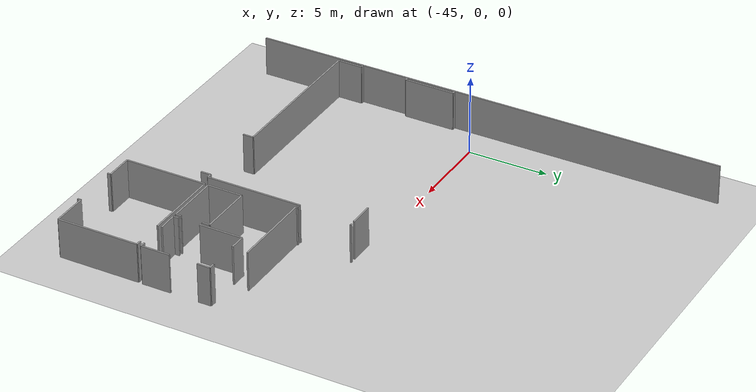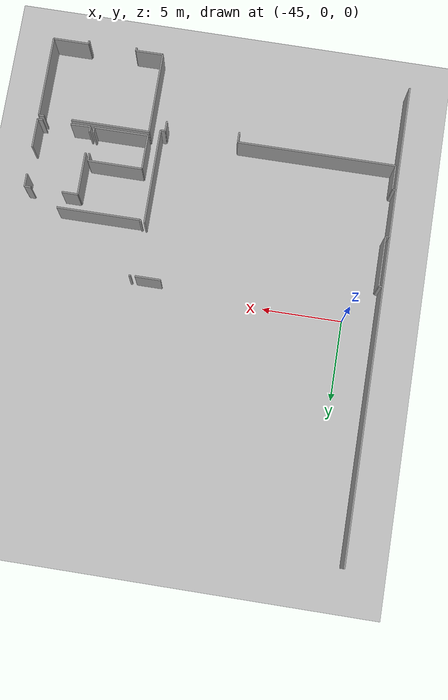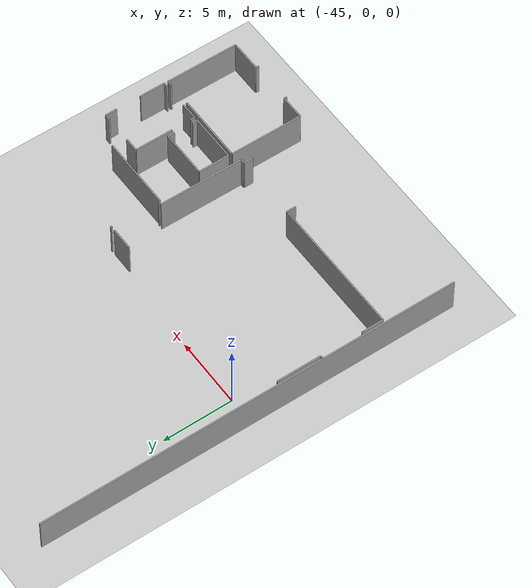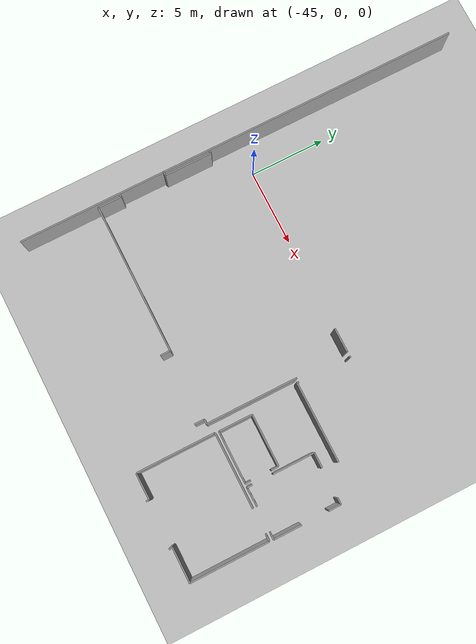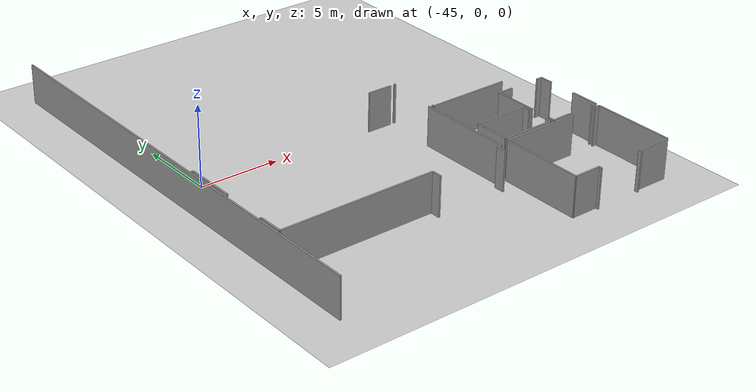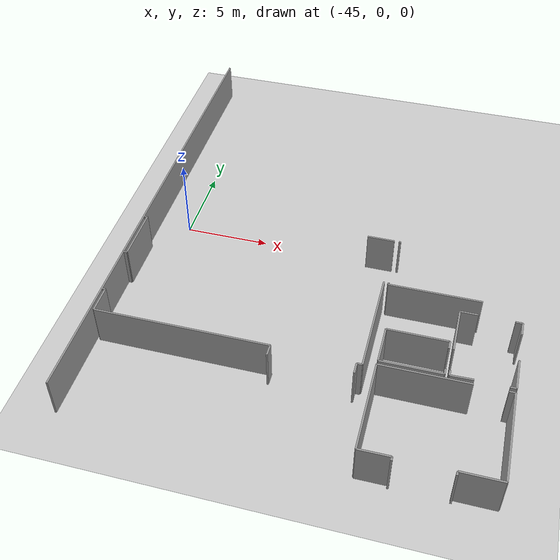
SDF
<sdf version="1.6">
 <world name="default">
  <model name="ground_plane">
   <static>1</static>
   <link name="link">
    <collision name="collision">
     <geometry><plane><normal>0 0 1</normal><size>100 100</size></plane></geometry>
     <surface><friction><ode><mu>100</mu><mu2>50</mu2></ode></friction></surface>
    </collision>
    <visual name="visual">
     <cast_shadows>0</cast_shadows>
     <geometry><plane><normal>0 0 1</normal><size>100 100</size></plane></geometry>
     <material>
      <script><uri>file://media/materials/scripts/gazebo.material</uri><name>Gazebo/Grey</name></script>
     </material>
    </visual>
   </link>
  </model>
  <model name="50045231">
   <static>1</static>
   <link name="Wall_0">
    <collision name="Wall_0_Collision">
     <geometry><box><size>1.54801707894 0.1 2.5</size></box></geometry>
     <pose>0.774008539471 0 1.25 0 0 0</pose>
    </collision>
    <visual name="Wall_0_Visual">
     <pose>0.774008539471 0 1.25 0 0 0</pose>
     <geometry><box><size>1.54801707894 0.1 2.5</size></box></geometry>
     <material>
      <script><uri>file://media/materials/scripts/gazebo.material</uri><name>Gazebo/Grey</name></script>
      <ambient>1 1 1 1</ambient>
     </material>
    </visual>
    <pose>0.215707297885 -24.7173917181 0 0 0 1.57079632679</pose>
   </link>
   <link name="Wall_1">
    <collision name="Wall_1_Collision">
     <geometry><box><size>0.215707297885 0.1 2.5</size></box></geometry>
     <pose>0.107853648943 0 1.25 0 0 0</pose>
    </collision>
    <visual name="Wall_1_Visual">
     <pose>0.107853648943 0 1.25 0 0 0</pose>
     <geometry><box><size>0.215707297885 0.1 2.5</size></box></geometry>
     <material>
      <script><uri>file://media/materials/scripts/gazebo.material</uri><name>Gazebo/Grey</name></script>
      <ambient>1 1 1 1</ambient>
     </material>
    </visual>
    <pose>0.215707297885 -23.1693746392 0 0 0 3.14159265359</pose>
   </link>
   <link name="Wall_2">
    <collision name="Wall_2_Collision">
     <geometry><box><size>0.233090768362 0.1 2.5</size></box></geometry>
     <pose>0.116545384181 0 1.25 0 0 0</pose>
    </collision>
    <visual name="Wall_2_Visual">
     <pose>0.116545384181 0 1.25 0 0 0</pose>
     <geometry><box><size>0.233090768362 0.1 2.5</size></box></geometry>
     <material>
      <script><uri>file://media/materials/scripts/gazebo.material</uri><name>Gazebo/Grey</name></script>
      <ambient>1 1 1 1</ambient>
     </material>
    </visual>
    <pose>0.0 -20.1388139905 0 0 0 0.0</pose>
   </link>
   <link name="Wall_3">
    <collision name="Wall_3_Collision">
     <geometry><box><size>3.15440201496 0.1 2.5</size></box></geometry>
     <pose>1.57720100748 0 1.25 0 0 0</pose>
    </collision>
    <visual name="Wall_3_Visual">
     <pose>1.57720100748 0 1.25 0 0 0</pose>
     <geometry><box><size>3.15440201496 0.1 2.5</size></box></geometry>
     <material>
      <script><uri>file://media/materials/scripts/gazebo.material</uri><name>Gazebo/Grey</name></script>
      <ambient>1 1 1 1</ambient>
     </material>
    </visual>
    <pose>0.233090768362 -20.1388139905 0 0 0 1.57079632679</pose>
   </link>
   <link name="Wall_4">
    <collision name="Wall_4_Collision">
     <geometry><box><size>0.206063912803 0.1 2.5</size></box></geometry>
     <pose>0.103031956402 0 1.25 0 0 0</pose>
    </collision>
    <visual name="Wall_4_Visual">
     <pose>0.103031956402 0 1.25 0 0 0</pose>
     <geometry><box><size>0.206063912803 0.1 2.5</size></box></geometry>
     <material>
      <script><uri>file://media/materials/scripts/gazebo.material</uri><name>Gazebo/Grey</name></script>
      <ambient>1 1 1 1</ambient>
     </material>
    </visual>
    <pose>0.233090768362 -16.9844119756 0 0 0 3.14159265359</pose>
   </link>
   <link name="Wall_23">
    <collision name="Wall_23_Collision">
     <geometry><box><size>1.59344249814 0.1 2.5</size></box></geometry>
     <pose>0.796721249072 0 1.25 0 0 0</pose>
    </collision>
    <visual name="Wall_23_Visual">
     <pose>0.796721249072 0 1.25 0 0 0</pose>
     <geometry><box><size>1.59344249814 0.1 2.5</size></box></geometry>
     <material>
      <script><uri>file://media/materials/scripts/gazebo.material</uri><name>Gazebo/Grey</name></script>
      <ambient>1 1 1 1</ambient>
     </material>
    </visual>
    <pose>13.4067161102 -15.2831158285 0 0 0 0.0</pose>
   </link>
   <link name="Wall_24">
    <collision name="Wall_24_Collision">
     <geometry><box><size>6.01163550542 0.1 2.5</size></box></geometry>
     <pose>3.00581775271 0 1.25 0 0 0</pose>
    </collision>
    <visual name="Wall_24_Visual">
     <pose>3.00581775271 0 1.25 0 0 0</pose>
     <geometry><box><size>6.01163550542 0.1 2.5</size></box></geometry>
     <material>
      <script><uri>file://media/materials/scripts/gazebo.material</uri><name>Gazebo/Grey</name></script>
      <ambient>1 1 1 1</ambient>
     </material>
    </visual>
    <pose>15.0001586083 -18.6902760419 0 0 0 -1.57079632679</pose>
   </link>
   <link name="Wall_25">
    <collision name="Wall_25_Collision">
     <geometry><box><size>0.299452484123 0.1 2.5</size></box></geometry>
     <pose>0.149726242062 0 1.25 0 0 0</pose>
    </collision>
    <visual name="Wall_25_Visual">
     <pose>0.149726242062 0 1.25 0 0 0</pose>
     <geometry><box><size>0.299452484123 0.1 2.5</size></box></geometry>
     <material>
      <script><uri>file://media/materials/scripts/gazebo.material</uri><name>Gazebo/Grey</name></script>
      <ambient>1 1 1 1</ambient>
     </material>
    </visual>
    <pose>15.0001586083 -24.7019115473 0 0 0 3.14159265359</pose>
   </link>
   <link name="Wall_26">
    <collision name="Wall_26_Collision">
     <geometry><box><size>0.640016241491 0.1 2.5</size></box></geometry>
     <pose>0.320008120745 0 1.25 0 0 0</pose>
    </collision>
    <visual name="Wall_26_Visual">
     <pose>0.320008120745 0 1.25 0 0 0</pose>
     <geometry><box><size>0.640016241491 0.1 2.5</size></box></geometry>
     <material>
      <script><uri>file://media/materials/scripts/gazebo.material</uri><name>Gazebo/Grey</name></script>
      <ambient>1 1 1 1</ambient>
     </material>
    </visual>
    <pose>14.7007061242 -24.7019115473 0 0 0 -1.57079632679</pose>
   </link>
   <link name="Wall_27">
    <collision name="Wall_27_Collision">
     <geometry><box><size>0.651055379677 0.1 2.5</size></box></geometry>
     <pose>0.325527689838 0 1.25 0 0 0</pose>
    </collision>
    <visual name="Wall_27_Visual">
     <pose>0.325527689838 0 1.25 0 0 0</pose>
     <geometry><box><size>0.651055379677 0.1 2.5</size></box></geometry>
     <material>
      <script><uri>file://media/materials/scripts/gazebo.material</uri><name>Gazebo/Grey</name></script>
      <ambient>1 1 1 1</ambient>
     </material>
    </visual>
    <pose>10.1217477367 -25.3419277888 0 0 0 1.57079632679</pose>
   </link>
   <link name="Wall_28">
    <collision name="Wall_28_Collision">
     <geometry><box><size>9.90607593593 0.1 2.5</size></box></geometry>
     <pose>4.95303796796 0 1.25 0 0 0</pose>
    </collision>
    <visual name="Wall_28_Visual">
     <pose>4.95303796796 0 1.25 0 0 0</pose>
     <geometry><box><size>9.90607593593 0.1 2.5</size></box></geometry>
     <material>
      <script><uri>file://media/materials/scripts/gazebo.material</uri><name>Gazebo/Grey</name></script>
      <ambient>1 1 1 1</ambient>
     </material>
    </visual>
    <pose>10.1217477367 -24.6908724091 0 0 0 -3.13891557532</pose>
   </link>
   <link name="Wall_29">
    <collision name="Wall_29_Collision">
     <geometry><box><size>0.125110232774 0.1 2.5</size></box></geometry>
     <pose>0.0625551163868 0 1.25 0 0 0</pose>
    </collision>
    <visual name="Wall_29_Visual">
     <pose>0.0625551163868 0 1.25 0 0 0</pose>
     <geometry><box><size>0.125110232774 0.1 2.5</size></box></geometry>
     <material>
      <script><uri>file://media/materials/scripts/gazebo.material</uri><name>Gazebo/Grey</name></script>
      <ambient>1 1 1 1</ambient>
     </material>
    </visual>
    <pose>15.2588804791 -18.8205886271 0 0 0 1.57079632679</pose>
   </link>
   <link name="Wall_30">
    <collision name="Wall_30_Collision">
     <geometry><box><size>0.125110232774 0.1 2.5</size></box></geometry>
     <pose>0.0625551163868 0 1.25 0 0 0</pose>
    </collision>
    <visual name="Wall_30_Visual">
     <pose>0.0625551163868 0 1.25 0 0 0</pose>
     <geometry><box><size>0.125110232774 0.1 2.5</size></box></geometry>
     <material>
      <script><uri>file://media/materials/scripts/gazebo.material</uri><name>Gazebo/Grey</name></script>
      <ambient>1 1 1 1</ambient>
     </material>
    </visual>
    <pose>15.2588804791 -15.2748681965 0 0 0 0.0</pose>
   </link>
   <link name="Wall_41">
    <collision name="Wall_41_Collision">
     <geometry><box><size>5.2339623277 0.1 2.5</size></box></geometry>
     <pose>2.61698116385 0 1.25 0 0 0</pose>
    </collision>
    <visual name="Wall_41_Visual">
     <pose>2.61698116385 0 1.25 0 0 0</pose>
     <geometry><box><size>5.2339623277 0.1 2.5</size></box></geometry>
     <material>
      <script><uri>file://media/materials/scripts/gazebo.material</uri><name>Gazebo/Grey</name></script>
      <ambient>1 1 1 1</ambient>
     </material>
    </visual>
    <pose>20.4928277323 -18.8080268492 0 0 0 -3.13919260001</pose>
   </link>
   <link name="Wall_71">
    <collision name="Wall_71_Collision">
     <geometry><box><size>0.342086397117 0.1 2.5</size></box></geometry>
     <pose>0.171043198559 0 1.25 0 0 0</pose>
    </collision>
    <visual name="Wall_71_Visual">
     <pose>0.171043198559 0 1.25 0 0 0</pose>
     <geometry><box><size>0.342086397117 0.1 2.5</size></box></geometry>
     <material>
      <script><uri>file://media/materials/scripts/gazebo.material</uri><name>Gazebo/Grey</name></script>
      <ambient>1 1 1 1</ambient>
     </material>
    </visual>
    <pose>19.3635365846 -24.2518446146 0 0 0 1.57079632679</pose>
   </link>
   <link name="Wall_72">
    <collision name="Wall_72_Collision">
     <geometry><box><size>2.71524733379 0.1 2.5</size></box></geometry>
     <pose>1.3576236669 0 1.25 0 0 0</pose>
    </collision>
    <visual name="Wall_72_Visual">
     <pose>1.3576236669 0 1.25 0 0 0</pose>
     <geometry><box><size>2.71524733379 0.1 2.5</size></box></geometry>
     <material>
      <script><uri>file://media/materials/scripts/gazebo.material</uri><name>Gazebo/Grey</name></script>
      <ambient>1 1 1 1</ambient>
     </material>
    </visual>
    <pose>19.3635365846 -22.5307541508 0 0 0 1.57079632679</pose>
   </link>
   <link name="Wall_73">
    <collision name="Wall_73_Collision">
     <geometry><box><size>0.994918189835 0.1 2.5</size></box></geometry>
     <pose>0.497459094918 0 1.25 0 0 0</pose>
    </collision>
    <visual name="Wall_73_Visual">
     <pose>0.497459094918 0 1.25 0 0 0</pose>
     <geometry><box><size>0.994918189835 0.1 2.5</size></box></geometry>
     <material>
      <script><uri>file://media/materials/scripts/gazebo.material</uri><name>Gazebo/Grey</name></script>
      <ambient>1 1 1 1</ambient>
     </material>
    </visual>
    <pose>19.3635365846 -19.815506817 0 0 0 0.0</pose>
   </link>
   <link name="Wall_74">
    <collision name="Wall_74_Collision">
     <geometry><box><size>0.393983035255 0.1 2.5</size></box></geometry>
     <pose>0.196991517628 0 1.25 0 0 0</pose>
    </collision>
    <visual name="Wall_74_Visual">
     <pose>0.196991517628 0 1.25 0 0 0</pose>
     <geometry><box><size>0.393983035255 0.1 2.5</size></box></geometry>
     <material>
      <script><uri>file://media/materials/scripts/gazebo.material</uri><name>Gazebo/Grey</name></script>
      <ambient>1 1 1 1</ambient>
     </material>
    </visual>
    <pose>22.3066723343 -19.815506817 0 0 0 0.0</pose>
   </link>
   <link name="Wall_75">
    <collision name="Wall_75_Collision">
     <geometry><box><size>0.805983974217 0.1 2.5</size></box></geometry>
     <pose>0.402991987108 0 1.25 0 0 0</pose>
    </collision>
    <visual name="Wall_75_Visual">
     <pose>0.402991987108 0 1.25 0 0 0</pose>
     <geometry><box><size>0.805983974217 0.1 2.5</size></box></geometry>
     <material>
      <script><uri>file://media/materials/scripts/gazebo.material</uri><name>Gazebo/Grey</name></script>
      <ambient>1 1 1 1</ambient>
     </material>
    </visual>
    <pose>22.7006553695 -19.815506817 0 0 0 -1.57079632679</pose>
   </link>
   <link name="Wall_76">
    <collision name="Wall_76_Collision">
     <geometry><box><size>1.82107714074 0.1 2.5</size></box></geometry>
     <pose>0.910538570368 0 1.25 0 0 0</pose>
    </collision>
    <visual name="Wall_76_Visual">
     <pose>0.910538570368 0 1.25 0 0 0</pose>
     <geometry><box><size>1.82107714074 0.1 2.5</size></box></geometry>
     <material>
      <script><uri>file://media/materials/scripts/gazebo.material</uri><name>Gazebo/Grey</name></script>
      <ambient>1 1 1 1</ambient>
     </material>
    </visual>
    <pose>22.7006553695 -22.3963811929 0 0 0 -1.57079632679</pose>
   </link>
   <link name="Wall_77">
    <collision name="Wall_77_Collision">
     <geometry><box><size>0.328890185952 0.1 2.5</size></box></geometry>
     <pose>0.164445092976 0 1.25 0 0 0</pose>
    </collision>
    <visual name="Wall_77_Visual">
     <pose>0.164445092976 0 1.25 0 0 0</pose>
     <geometry><box><size>0.328890185952 0.1 2.5</size></box></geometry>
     <material>
      <script><uri>file://media/materials/scripts/gazebo.material</uri><name>Gazebo/Grey</name></script>
      <ambient>1 1 1 1</ambient>
     </material>
    </visual>
    <pose>22.7006553695 -24.2174583336 0 0 0 3.14159265359</pose>
   </link>
   <link name="Wall_78">
    <collision name="Wall_78_Collision">
     <geometry><box><size>1.23533950931 0.1 2.5</size></box></geometry>
     <pose>0.617669754653 0 1.25 0 0 0</pose>
    </collision>
    <visual name="Wall_78_Visual">
     <pose>0.617669754653 0 1.25 0 0 0</pose>
     <geometry><box><size>1.23533950931 0.1 2.5</size></box></geometry>
     <material>
      <script><uri>file://media/materials/scripts/gazebo.material</uri><name>Gazebo/Grey</name></script>
      <ambient>1 1 1 1</ambient>
     </material>
    </visual>
    <pose>20.5983974217 -24.2174583336 0 0 0 -3.11375356741</pose>
   </link>
   <link name="Wall_79">
    <collision name="Wall_79_Collision">
     <geometry><box><size>2.19691538564 0.1 2.5</size></box></geometry>
     <pose>1.09845769282 0 1.25 0 0 0</pose>
    </collision>
    <visual name="Wall_79_Visual">
     <pose>1.09845769282 0 1.25 0 0 0</pose>
     <geometry><box><size>2.19691538564 0.1 2.5</size></box></geometry>
     <material>
      <script><uri>file://media/materials/scripts/gazebo.material</uri><name>Gazebo/Grey</name></script>
      <ambient>1 1 1 1</ambient>
     </material>
    </visual>
    <pose>15.7212554165 -24.2479111286 0 0 0 1.57079632679</pose>
   </link>
   <link name="Wall_80">
    <collision name="Wall_80_Collision">
     <geometry><box><size>3.39954701467 0.1 2.5</size></box></geometry>
     <pose>1.69977350734 0 1.25 0 0 0</pose>
    </collision>
    <visual name="Wall_80_Visual">
     <pose>1.69977350734 0 1.25 0 0 0</pose>
     <geometry><box><size>3.39954701467 0.1 2.5</size></box></geometry>
     <material>
      <script><uri>file://media/materials/scripts/gazebo.material</uri><name>Gazebo/Grey</name></script>
      <ambient>1 1 1 1</ambient>
     </material>
    </visual>
    <pose>15.7212554165 -22.050995743 0 0 0 0.0</pose>
   </link>
   <link name="Wall_81">
    <collision name="Wall_81_Collision">
     <geometry><box><size>0.479758407826 0.1 2.5</size></box></geometry>
     <pose>0.239879203913 0 1.25 0 0 0</pose>
    </collision>
    <visual name="Wall_81_Visual">
     <pose>0.239879203913 0 1.25 0 0 0</pose>
     <geometry><box><size>0.479758407826 0.1 2.5</size></box></geometry>
     <material>
      <script><uri>file://media/materials/scripts/gazebo.material</uri><name>Gazebo/Grey</name></script>
      <ambient>1 1 1 1</ambient>
     </material>
    </visual>
    <pose>19.1208024311 -22.050995743 0 0 0 -1.57079632679</pose>
   </link>
   <link name="Wall_82">
    <collision name="Wall_82_Collision">
     <geometry><box><size>0.35502883499 0.1 2.5</size></box></geometry>
     <pose>0.177514417495 0 1.25 0 0 0</pose>
    </collision>
    <visual name="Wall_82_Visual">
     <pose>0.177514417495 0 1.25 0 0 0</pose>
     <geometry><box><size>0.35502883499 0.1 2.5</size></box></geometry>
     <material>
      <script><uri>file://media/materials/scripts/gazebo.material</uri><name>Gazebo/Grey</name></script>
      <ambient>1 1 1 1</ambient>
     </material>
    </visual>
    <pose>19.1208024311 -23.8834926818 0 0 0 -1.57079632679</pose>
   </link>
   <link name="Wall_83">
    <collision name="Wall_83_Collision">
     <geometry><box><size>3.39955998179 0.1 2.5</size></box></geometry>
     <pose>1.6997799909 0 1.25 0 0 0</pose>
    </collision>
    <visual name="Wall_83_Visual">
     <pose>1.6997799909 0 1.25 0 0 0</pose>
     <geometry><box><size>3.39955998179 0.1 2.5</size></box></geometry>
     <material>
      <script><uri>file://media/materials/scripts/gazebo.material</uri><name>Gazebo/Grey</name></script>
      <ambient>1 1 1 1</ambient>
     </material>
    </visual>
    <pose>19.1208024311 -24.2385215168 0 0 0 -3.1388306421</pose>
   </link>
   <link name="Wall_84">
    <collision name="Wall_84_Collision">
     <geometry><box><size>5.16821997069 0.1 2.5</size></box></geometry>
     <pose>2.58410998534 0 1.25 0 0 0</pose>
    </collision>
    <visual name="Wall_84_Visual">
     <pose>2.58410998534 0 1.25 0 0 0</pose>
     <geometry><box><size>5.16821997069 0.1 2.5</size></box></geometry>
     <material>
      <script><uri>file://media/materials/scripts/gazebo.material</uri><name>Gazebo/Grey</name></script>
      <ambient>1 1 1 1</ambient>
     </material>
    </visual>
    <pose>15.6869960221 -29.6605147791 0 0 0 1.57079632679</pose>
   </link>
   <link name="Wall_85">
    <collision name="Wall_85_Collision">
     <geometry><box><size>4.91660375204 0.1 2.5</size></box></geometry>
     <pose>2.45830187602 0 1.25 0 0 0</pose>
    </collision>
    <visual name="Wall_85_Visual">
     <pose>2.45830187602 0 1.25 0 0 0</pose>
     <geometry><box><size>4.91660375204 0.1 2.5</size></box></geometry>
     <material>
      <script><uri>file://media/materials/scripts/gazebo.material</uri><name>Gazebo/Grey</name></script>
      <ambient>1 1 1 1</ambient>
     </material>
    </visual>
    <pose>15.6869960221 -24.4922948084 0 0 0 0.0</pose>
   </link>
   <link name="Wall_86">
    <collision name="Wall_86_Collision">
     <geometry><box><size>0.331047258931 0.1 2.5</size></box></geometry>
     <pose>0.165523629466 0 1.25 0 0 0</pose>
    </collision>
    <visual name="Wall_86_Visual">
     <pose>0.165523629466 0 1.25 0 0 0</pose>
     <geometry><box><size>0.331047258931 0.1 2.5</size></box></geometry>
     <material>
      <script><uri>file://media/materials/scripts/gazebo.material</uri><name>Gazebo/Grey</name></script>
      <ambient>1 1 1 1</ambient>
     </material>
    </visual>
    <pose>22.346895401 -24.4922948084 0 0 0 0.0</pose>
   </link>
   <link name="Wall_87">
    <collision name="Wall_87_Collision">
     <geometry><box><size>5.14170066171 0.1 2.5</size></box></geometry>
     <pose>2.57085033086 0 1.25 0 0 0</pose>
    </collision>
    <visual name="Wall_87_Visual">
     <pose>2.57085033086 0 1.25 0 0 0</pose>
     <geometry><box><size>5.14170066171 0.1 2.5</size></box></geometry>
     <material>
      <script><uri>file://media/materials/scripts/gazebo.material</uri><name>Gazebo/Grey</name></script>
      <ambient>1 1 1 1</ambient>
     </material>
    </visual>
    <pose>22.6779426599 -24.4922948084 0 0 0 -1.57079632679</pose>
   </link>
   <link name="Wall_88">
    <collision name="Wall_88_Collision">
     <geometry><box><size>2.23980307193 0.1 2.5</size></box></geometry>
     <pose>1.11990153596 0 1.25 0 0 0</pose>
    </collision>
    <visual name="Wall_88_Visual">
     <pose>1.11990153596 0 1.25 0 0 0</pose>
     <geometry><box><size>2.23980307193 0.1 2.5</size></box></geometry>
     <material>
      <script><uri>file://media/materials/scripts/gazebo.material</uri><name>Gazebo/Grey</name></script>
      <ambient>1 1 1 1</ambient>
     </material>
    </visual>
    <pose>22.6779426599 -29.6339954701 0 0 0 3.14159265359</pose>
   </link>
   <link name="Wall_89">
    <collision name="Wall_89_Collision">
     <geometry><box><size>0.220402103781 0.1 2.5</size></box></geometry>
     <pose>0.11020105189 0 1.25 0 0 0</pose>
    </collision>
    <visual name="Wall_89_Visual">
     <pose>0.11020105189 0 1.25 0 0 0</pose>
     <geometry><box><size>0.220402103781 0.1 2.5</size></box></geometry>
     <material>
      <script><uri>file://media/materials/scripts/gazebo.material</uri><name>Gazebo/Grey</name></script>
      <ambient>1 1 1 1</ambient>
     </material>
    </visual>
    <pose>20.438139588 -29.6339954701 0 0 0 -1.57079632679</pose>
   </link>
   <link name="Wall_90">
    <collision name="Wall_90_Collision">
     <geometry><box><size>0.208855419011 0.1 2.5</size></box></geometry>
     <pose>0.104427709506 0 1.25 0 0 0</pose>
    </collision>
    <visual name="Wall_90_Visual">
     <pose>0.104427709506 0 1.25 0 0 0</pose>
     <geometry><box><size>0.208855419011 0.1 2.5</size></box></geometry>
     <material>
      <script><uri>file://media/materials/scripts/gazebo.material</uri><name>Gazebo/Grey</name></script>
      <ambient>1 1 1 1</ambient>
     </material>
    </visual>
    <pose>17.3988237608 -29.8543975739 0 0 0 1.57079632679</pose>
   </link>
   <link name="Wall_91">
    <collision name="Wall_91_Collision">
     <geometry><box><size>1.711893217 0.1 2.5</size></box></geometry>
     <pose>0.855946608502 0 1.25 0 0 0</pose>
    </collision>
    <visual name="Wall_91_Visual">
     <pose>0.855946608502 0 1.25 0 0 0</pose>
     <geometry><box><size>1.711893217 0.1 2.5</size></box></geometry>
     <material>
      <script><uri>file://media/materials/scripts/gazebo.material</uri><name>Gazebo/Grey</name></script>
      <ambient>1 1 1 1</ambient>
     </material>
    </visual>
    <pose>17.3988237608 -29.6455421549 0 0 0 -3.13284630484</pose>
   </link>
   <link name="Wall_214">
    <collision name="Wall_214_Collision">
     <geometry><box><size>29.8750800972 0.1 2.5</size></box></geometry>
     <pose>14.9375400486 0 1.25 0 0 0</pose>
    </collision>
    <visual name="Wall_214_Visual">
     <pose>14.9375400486 0 1.25 0 0 0</pose>
     <geometry><box><size>29.8750800972 0.1 2.5</size></box></geometry>
     <material>
      <script><uri>file://media/materials/scripts/gazebo.material</uri><name>Gazebo/Grey</name></script>
      <ambient>1 1 1 1</ambient>
     </material>
    </visual>
    <pose>0.0 -29.8750800972 0 0 0 1.57079632679</pose>
   </link>
   <pose>-47.0 14.9250800972 0 0 0 0</pose>
  </model>
 </world>
</sdf>
